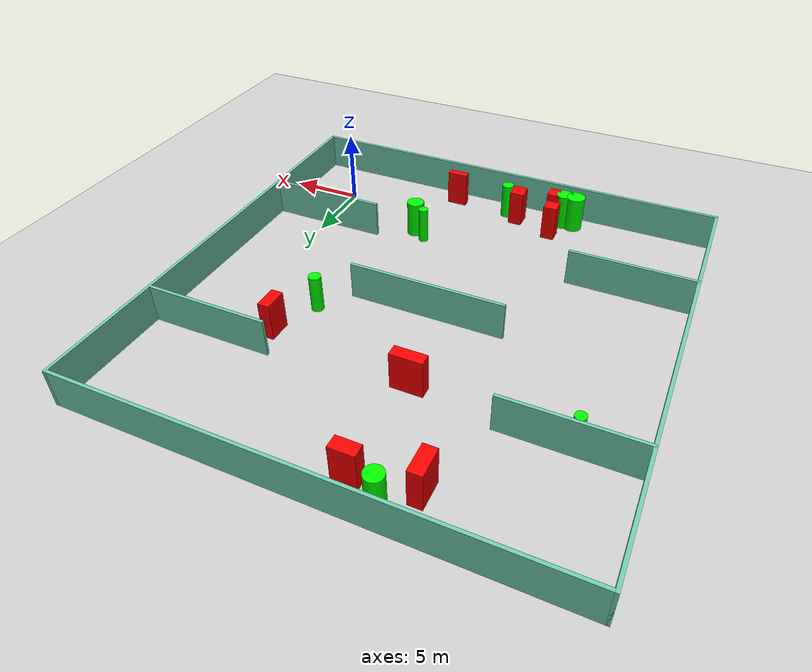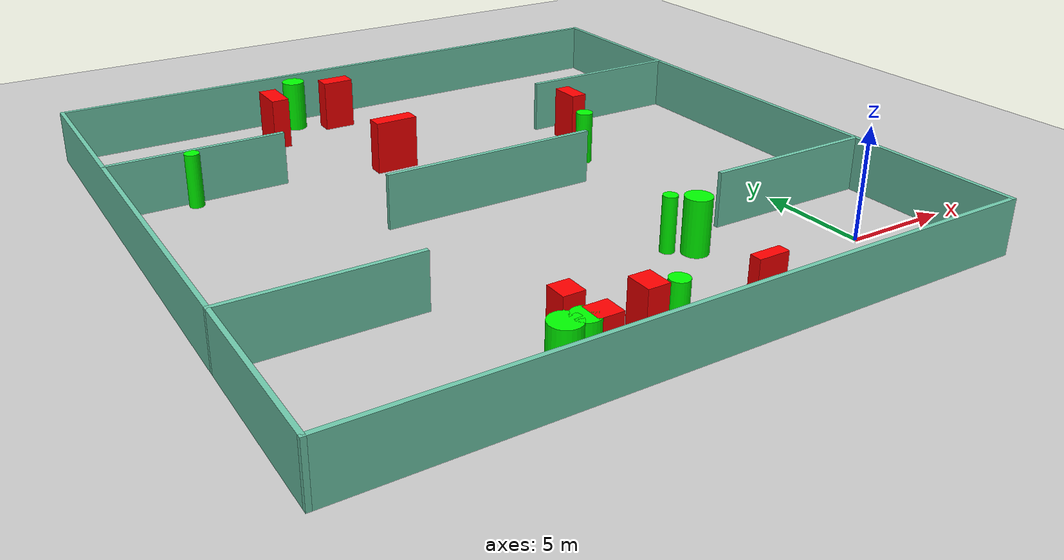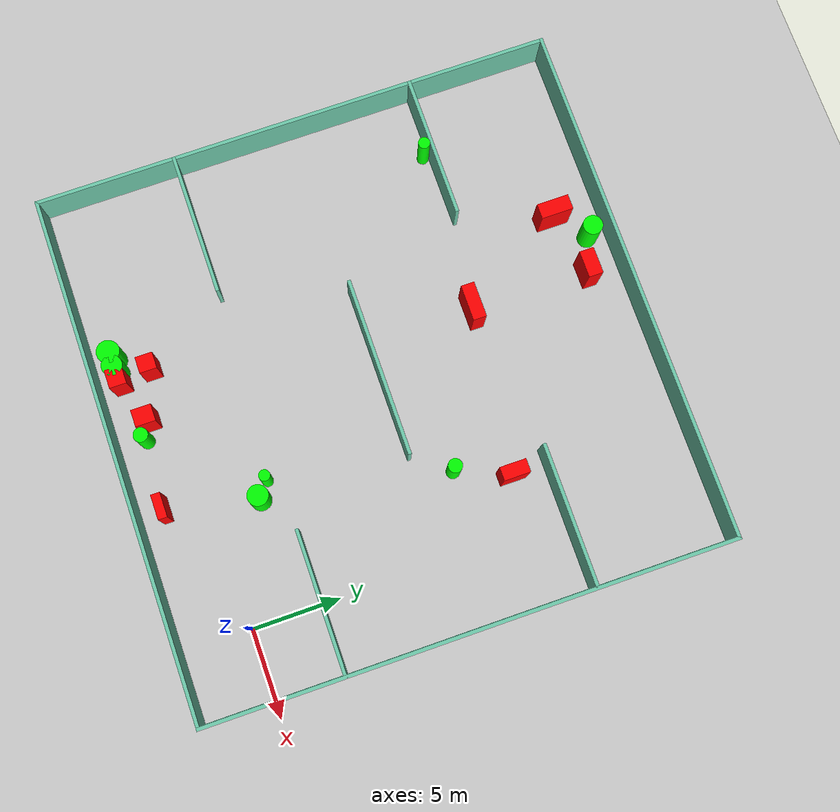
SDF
<sdf version="1.7">
 <world name="default">
  <light name="sun" type="directional">
   <pose>0 0 10 0 -0 0</pose>
   <diffuse>0.8 0.8 0.8 1</diffuse>
   <specular>0.2 0.2 0.2 1</specular>
   <attenuation>
    <range>1000</range>
    <constant>0.9</constant>
    <linear>0.01</linear>
    <quadratic>0.001</quadratic>
   </attenuation>
   <direction>-0.5 0.1 -0.9</direction>
   <spot><inner_angle>0</inner_angle><outer_angle>0</outer_angle><falloff>0</falloff></spot>
  </light>
  <model name="ground_plane">
   <static>1</static>
   <link name="link">
    <collision name="collision">
     <geometry><plane><normal>0 0 1</normal><size>100 100</size></plane></geometry>
     <surface>
      <contact><collide_bitmask>65535</collide_bitmask></contact>
      <friction><ode><mu>100</mu><mu2>50</mu2></ode></friction>
     </surface>
    </collision>
    <visual name="visual">
     <cast_shadows>0</cast_shadows>
     <geometry><plane><normal>0 0 1</normal><size>100 100</size></plane></geometry>
     <material>
      <script><uri>file://media/materials/scripts/gazebo.material</uri><name>Gazebo/Grey</name></script>
     </material>
    </visual>
   </link>
  </model>
  <gravity>0 0 -9.8</gravity>
  <magnetic_field>6e-06 2.3e-05 -4.2e-05</magnetic_field>
  <atmosphere type="adiabatic"/>
  <physics type="ode">
   <max_step_size>0.001</max_step_size>
   <real_time_factor>1</real_time_factor>
   <real_time_update_rate>1000</real_time_update_rate>
  </physics>
  <scene><ambient>0.4 0.4 0.4 1</ambient><background>0.7 0.7 0.7 1</background><shadows>1</shadows></scene>
  <spherical_coordinates>
   <surface_model>EARTH_WGS84</surface_model>
   <latitude_deg>0</latitude_deg>
   <longitude_deg>0</longitude_deg>
   <elevation>0</elevation>
   <heading_deg>0</heading_deg>
  </spherical_coordinates>
  <model name="my_base_walls">
   <link name="Wall_10">
    <collision name="Wall_10_Collision">
     <geometry><box><size>8.2 0.2 2.5</size></box></geometry>
     <pose>0 0 1.25 0 -0 0</pose>
    </collision>
    <visual name="Wall_10_Visual">
     <pose>0 0 1.25 0 -0 0</pose>
     <geometry><box><size>8.2 0.2 2.5</size></box></geometry>
     <material>
      <script><uri>file://media/materials/scripts/gazebo.material</uri><name>Gazebo/Grey</name></script>
      <ambient>0.435294 0.796078 0.67451 1</ambient>
     </material>
     <meta><layer>0</layer></meta>
    </visual>
    <pose>-11 -7 0 0 -0 0</pose>
   </link>
   <link name="Wall_12">
    <collision name="Wall_12_Collision">
     <geometry><box><size>8.2 0.2 2.5</size></box></geometry>
     <pose>0 0 1.25 0 -0 0</pose>
    </collision>
    <visual name="Wall_12_Visual">
     <pose>0 0 1.25 0 -0 0</pose>
     <geometry><box><size>8.2 0.2 2.5</size></box></geometry>
     <material>
      <script><uri>file://media/materials/scripts/gazebo.material</uri><name>Gazebo/Grey</name></script>
      <ambient>0.435294 0.796078 0.67451 1</ambient>
     </material>
     <meta><layer>0</layer></meta>
    </visual>
    <pose>-11 7 0 0 -0 0</pose>
   </link>
   <link name="Wall_14">
    <collision name="Wall_14_Collision">
     <geometry><box><size>8.2 0.2 2.5</size></box></geometry>
     <pose>0 0 1.25 0 -0 0</pose>
    </collision>
    <visual name="Wall_14_Visual">
     <pose>0 0 1.25 0 -0 0</pose>
     <geometry><box><size>8.2 0.2 2.5</size></box></geometry>
     <material>
      <script><uri>file://media/materials/scripts/gazebo.material</uri><name>Gazebo/Grey</name></script>
      <ambient>0.435294 0.796078 0.67451 1</ambient>
     </material>
     <meta><layer>0</layer></meta>
    </visual>
    <pose>11 7 0 0 -0 3.14159</pose>
   </link>
   <link name="Wall_16">
    <collision name="Wall_16_Collision">
     <geometry><box><size>10.2 0.2 2.5</size></box></geometry>
     <pose>0 0 1.25 0 -0 0</pose>
    </collision>
    <visual name="Wall_16_Visual">
     <pose>0 0 1.25 0 -0 0</pose>
     <geometry><box><size>10.2 0.2 2.5</size></box></geometry>
     <material>
      <script><uri>file://media/materials/scripts/gazebo.material</uri><name>Gazebo/Grey</name></script>
      <ambient>0.435294 0.796078 0.67451 1</ambient>
     </material>
     <meta><layer>0</layer></meta>
    </visual>
    <pose>0 0 0 0 -0 3.14159</pose>
   </link>
   <link name="Wall_2">
    <collision name="Wall_2_Collision">
     <geometry><box><size>30.2 0.2 2.5</size></box></geometry>
     <pose>0 0 1.25 0 -0 0</pose>
    </collision>
    <visual name="Wall_2_Visual">
     <pose>0 0 1.25 0 -0 0</pose>
     <geometry><box><size>30.2 0.2 2.5</size></box></geometry>
     <material>
      <script><uri>file://media/materials/scripts/gazebo.material</uri><name>Gazebo/Grey</name></script>
      <ambient>0.435294 0.796078 0.67451 1</ambient>
     </material>
     <meta><layer>0</layer></meta>
    </visual>
    <pose>0 -15 0 0 -0 3.14159</pose>
   </link>
   <link name="Wall_3">
    <collision name="Wall_3_Collision">
     <geometry><box><size>30.2 0.2 2.5</size></box></geometry>
     <pose>0 0 1.25 0 -0 0</pose>
    </collision>
    <visual name="Wall_3_Visual">
     <pose>0 0 1.25 0 -0 0</pose>
     <geometry><box><size>30.2 0.2 2.5</size></box></geometry>
     <material>
      <script><uri>file://media/materials/scripts/gazebo.material</uri><name>Gazebo/Grey</name></script>
      <ambient>0.435294 0.796078 0.67451 1</ambient>
     </material>
     <meta><layer>0</layer></meta>
    </visual>
    <pose>-15 0 0 0 -0 1.5708</pose>
   </link>
   <link name="Wall_4">
    <collision name="Wall_4_Collision">
     <geometry><box><size>30.2 0.2 2.5</size></box></geometry>
     <pose>0 0 1.25 0 -0 0</pose>
    </collision>
    <visual name="Wall_4_Visual">
     <pose>0 0 1.25 0 -0 0</pose>
     <geometry><box><size>30.2 0.2 2.5</size></box></geometry>
     <material>
      <script><uri>file://media/materials/scripts/gazebo.material</uri><name>Gazebo/Grey</name></script>
      <ambient>0.435294 0.796078 0.67451 1</ambient>
     </material>
     <meta><layer>0</layer></meta>
    </visual>
    <pose>0 15 0 0 -0 0</pose>
   </link>
   <link name="Wall_6">
    <collision name="Wall_6_Collision">
     <geometry><box><size>30.2 0.2 2.5</size></box></geometry>
     <pose>0 0 1.25 0 -0 0</pose>
    </collision>
    <visual name="Wall_6_Visual">
     <pose>0 0 1.25 0 -0 0</pose>
     <geometry><box><size>30.2 0.2 2.5</size></box></geometry>
     <material>
      <script><uri>file://media/materials/scripts/gazebo.material</uri><name>Gazebo/Grey</name></script>
      <ambient>0.435294 0.796078 0.67451 1</ambient>
     </material>
     <meta><layer>0</layer></meta>
    </visual>
    <pose>15 0 0 0 -0 1.5708</pose>
   </link>
   <link name="Wall_8">
    <collision name="Wall_8_Collision">
     <geometry><box><size>8.2 0.2 2.5</size></box></geometry>
     <pose>0 0 1.25 0 -0 0</pose>
    </collision>
    <visual name="Wall_8_Visual">
     <pose>0 0 1.25 0 -0 0</pose>
     <geometry><box><size>8.2 0.2 2.5</size></box></geometry>
     <material>
      <script><uri>file://media/materials/scripts/gazebo.material</uri><name>Gazebo/Grey</name></script>
      <ambient>0.435294 0.796078 0.67451 1</ambient>
     </material>
     <meta><layer>0</layer></meta>
    </visual>
    <pose>11 -7 0 0 -0 3.14159</pose>
   </link>
   <static>1</static>
   <pose>-11 11 0 0 -0 0</pose>
  </model>
  <model name="cylinder1">
   <static>1</static>
   <link name="link">
    <inertial>
     <mass>1</mass>
     <inertia><ixx>0.5</ixx><ixy>0</ixy><ixz>0</ixz><iyy>0.5</iyy><iyz>0</iyz><izz>1</izz></inertia>
    </inertial>
    <collision name="collision">
     <geometry><cylinder><radius>0.6438379884076393</radius><length>2.5</length></cylinder></geometry>
    </collision>
    <visual name="visual">
     <geometry><cylinder><radius>0.6438379884076393</radius><length>2.5</length></cylinder></geometry>
     <material>
      <ambient>0 1 0 1</ambient>
      <diffuse>0 1 0 1</diffuse>
      <specular>0.1 0.1 0.1 1</specular>
      <emissive>0 0 0 0</emissive>
     </material>
    </visual>
   </link>
   <pose>-16.569602091122363 -2.684606723683738 1.25 0 0 0</pose>
  </model>
  <model name="cylinder2">
   <static>1</static>
   <link name="link">
    <inertial>
     <mass>1</mass>
     <inertia><ixx>0.5</ixx><ixy>0</ixy><ixz>0</ixz><iyy>0.5</iyy><iyz>0</iyz><izz>1</izz></inertia>
    </inertial>
    <collision name="collision">
     <geometry><cylinder><radius>0.5901810041488547</radius><length>2.5</length></cylinder></geometry>
    </collision>
    <visual name="visual">
     <geometry><cylinder><radius>0.5901810041488547</radius><length>2.5</length></cylinder></geometry>
     <material>
      <ambient>0 1 0 1</ambient>
      <diffuse>0 1 0 1</diffuse>
      <specular>0.1 0.1 0.1 1</specular>
      <emissive>0 0 0 0</emissive>
     </material>
    </visual>
   </link>
   <pose>-6.455051863899696 2.6063761233250267 1.25 0 0 0</pose>
  </model>
  <model name="cylinder3">
   <static>1</static>
   <link name="link">
    <inertial>
     <mass>1</mass>
     <inertia><ixx>0.5</ixx><ixy>0</ixy><ixz>0</ixz><iyy>0.5</iyy><iyz>0</iyz><izz>1</izz></inertia>
    </inertial>
    <collision name="collision">
     <geometry><cylinder><radius>0.5833850374250258</radius><length>2.5</length></cylinder></geometry>
    </collision>
    <visual name="visual">
     <geometry><cylinder><radius>0.5833850374250258</radius><length>2.5</length></cylinder></geometry>
     <material>
      <ambient>0 1 0 1</ambient>
      <diffuse>0 1 0 1</diffuse>
      <specular>0.1 0.1 0.1 1</specular>
      <emissive>0 0 0 0</emissive>
     </material>
    </visual>
   </link>
   <pose>-15.77739012289895 -2.706100187088779 1.25 0 0 0</pose>
  </model>
  <model name="cylinder4">
   <static>1</static>
   <link name="link">
    <inertial>
     <mass>1</mass>
     <inertia><ixx>0.5</ixx><ixy>0</ixy><ixz>0</ixz><iyy>0.5</iyy><iyz>0</iyz><izz>1</izz></inertia>
    </inertial>
    <collision name="collision">
     <geometry><cylinder><radius>0.32051737987567175</radius><length>2.5</length></cylinder></geometry>
    </collision>
    <visual name="visual">
     <geometry><cylinder><radius>0.32051737987567175</radius><length>2.5</length></cylinder></geometry>
     <material>
      <ambient>0 1 0 1</ambient>
      <diffuse>0 1 0 1</diffuse>
      <specular>0.1 0.1 0.1 1</specular>
      <emissive>0 0 0 0</emissive>
     </material>
    </visual>
   </link>
   <pose>-7.358739198986006 3.26920246077061 1.25 0 0 0</pose>
  </model>
  <model name="cylinder5">
   <static>1</static>
   <link name="link">
    <inertial>
     <mass>1</mass>
     <inertia><ixx>0.5</ixx><ixy>0</ixy><ixz>0</ixz><iyy>0.5</iyy><iyz>0</iyz><izz>1</izz></inertia>
    </inertial>
    <collision name="collision">
     <geometry><cylinder><radius>0.33810806525988046</radius><length>2.5</length></cylinder></geometry>
    </collision>
    <visual name="visual">
     <geometry><cylinder><radius>0.33810806525988046</radius><length>2.5</length></cylinder></geometry>
     <material>
      <ambient>0 1 0 1</ambient>
      <diffuse>0 1 0 1</diffuse>
      <specular>0.1 0.1 0.1 1</specular>
      <emissive>0 0 0 0</emissive>
     </material>
    </visual>
   </link>
   <pose>-22.300162711085644 17.592819619946162 1.25 0 0 0</pose>
  </model>
  <model name="cylinder6">
   <static>1</static>
   <link name="link">
    <inertial>
     <mass>1</mass>
     <inertia><ixx>0.5</ixx><ixy>0</ixy><ixz>0</ixz><iyy>0.5</iyy><iyz>0</iyz><izz>1</izz></inertia>
    </inertial>
    <collision name="collision">
     <geometry><cylinder><radius>0.4102916097114288</radius><length>2.5</length></cylinder></geometry>
    </collision>
    <visual name="visual">
     <geometry><cylinder><radius>0.4102916097114288</radius><length>2.5</length></cylinder></geometry>
     <material>
      <ambient>0 1 0 1</ambient>
      <diffuse>0 1 0 1</diffuse>
      <specular>0.1 0.1 0.1 1</specular>
      <emissive>0 0 0 0</emissive>
     </material>
    </visual>
   </link>
   <pose>-11.606263954053116 -2.338652713435972 1.25 0 0 0</pose>
  </model>
  <model name="cylinder7">
   <static>1</static>
   <link name="link">
    <inertial>
     <mass>1</mass>
     <inertia><ixx>0.5</ixx><ixy>0</ixy><ixz>0</ixz><iyy>0.5</iyy><iyz>0</iyz><izz>1</izz></inertia>
    </inertial>
    <collision name="collision">
     <geometry><cylinder><radius>0.5578835875303454</radius><length>2.5</length></cylinder></geometry>
    </collision>
    <visual name="visual">
     <geometry><cylinder><radius>0.5578835875303454</radius><length>2.5</length></cylinder></geometry>
     <material>
      <ambient>0 1 0 1</ambient>
      <diffuse>0 1 0 1</diffuse>
      <specular>0.1 0.1 0.1 1</specular>
      <emissive>0 0 0 0</emissive>
     </material>
    </visual>
   </link>
   <pose>-14.698235415274322 24.855662310693987 1.25 0 0 0</pose>
  </model>
  <model name="cylinder8">
   <static>1</static>
   <link name="link">
    <inertial>
     <mass>1</mass>
     <inertia><ixx>0.5</ixx><ixy>0</ixy><ixz>0</ixz><iyy>0.5</iyy><iyz>0</iyz><izz>1</izz></inertia>
    </inertial>
    <collision name="collision">
     <geometry><cylinder><radius>0.4002317875192927</radius><length>2.5</length></cylinder></geometry>
    </collision>
    <visual name="visual">
     <geometry><cylinder><radius>0.4002317875192927</radius><length>2.5</length></cylinder></geometry>
     <material>
      <ambient>0 1 0 1</ambient>
      <diffuse>0 1 0 1</diffuse>
      <specular>0.1 0.1 0.1 1</specular>
      <emissive>0 0 0 0</emissive>
     </material>
    </visual>
   </link>
   <pose>-4.522630494713415 13.090108621580928 1.25 0 0 0</pose>
  </model>
  <model name="box1">
   <static>1</static>
   <link name="link">
    <inertial>
     <mass>1</mass>
     <inertia><ixx>0.083</ixx><ixy>0</ixy><ixz>0</ixz><iyy>0.083</iyy><iyz>0</iyz><izz>0.083</izz></inertia>
    </inertial>
    <collision name="collision">
     <geometry><box><size>2.041406359951989 0.7665713573871717 2.5</size></box></geometry>
    </collision>
    <visual name="visual">
     <geometry><box><size>2.041406359951989 0.7665713573871717 2.5</size></box></geometry>
     <material>
      <ambient>1 0 0 1</ambient>
      <diffuse>1 0 0 1</diffuse>
      <specular>0.1 0.1 0.1 1</specular>
      <emissive>0 0 0 0</emissive>
     </material>
    </visual>
    <sensor name="my_contact" type="contact">
     <contact><collision>box_collision</collision><topic>__default_topic__</topic></contact>
    </sensor>
   </link>
   <pose>-12.754446072797549 17.109061805316564 1.25 0 0 0</pose>
  </model>
  <model name="box2">
   <static>1</static>
   <link name="link">
    <inertial>
     <mass>1</mass>
     <inertia><ixx>0.083</ixx><ixy>0</ixy><ixz>0</ixz><iyy>0.083</iyy><iyz>0</iyz><izz>0.083</izz></inertia>
    </inertial>
    <collision name="collision">
     <geometry><box><size>1.0334237197969531 0.9631770726036406 2.5</size></box></geometry>
    </collision>
    <visual name="visual">
     <geometry><box><size>1.0334237197969531 0.9631770726036406 2.5</size></box></geometry>
     <material>
      <ambient>1 0 0 1</ambient>
      <diffuse>1 0 0 1</diffuse>
      <specular>0.1 0.1 0.1 1</specular>
      <emissive>0 0 0 0</emissive>
     </material>
    </visual>
    <sensor name="my_contact" type="contact">
     <contact><collision>box_collision</collision><topic>__default_topic__</topic></contact>
    </sensor>
   </link>
   <pose>-15.101681868721826 -2.7086303581506126 1.25 0 0 0</pose>
  </model>
  <model name="box3">
   <static>1</static>
   <link name="link">
    <inertial>
     <mass>1</mass>
     <inertia><ixx>0.083</ixx><ixy>0</ixy><ixz>0</ixz><iyy>0.083</iyy><iyz>0</iyz><izz>0.083</izz></inertia>
    </inertial>
    <collision name="collision">
     <geometry><box><size>0.9288381345626681 0.9763123101065528 2.5</size></box></geometry>
    </collision>
    <visual name="visual">
     <geometry><box><size>0.9288381345626681 0.9763123101065528 2.5</size></box></geometry>
     <material>
      <ambient>1 0 0 1</ambient>
      <diffuse>1 0 0 1</diffuse>
      <specular>0.1 0.1 0.1 1</specular>
      <emissive>0 0 0 0</emissive>
     </material>
    </visual>
    <sensor name="my_contact" type="contact">
     <contact><collision>box_collision</collision><topic>__default_topic__</topic></contact>
    </sensor>
   </link>
   <pose>-15.311407218665568 -0.9127762437076847 1.25 0 0 0</pose>
  </model>
  <model name="box4">
   <static>1</static>
   <link name="link">
    <inertial>
     <mass>1</mass>
     <inertia><ixx>0.083</ixx><ixy>0</ixy><ixz>0</ixz><iyy>0.083</iyy><iyz>0</iyz><izz>0.083</izz></inertia>
    </inertial>
    <collision name="collision">
     <geometry><box><size>1.5279373540868257 0.8325225024604794 2.5</size></box></geometry>
    </collision>
    <visual name="visual">
     <geometry><box><size>1.5279373540868257 0.8325225024604794 2.5</size></box></geometry>
     <material>
      <ambient>1 0 0 1</ambient>
      <diffuse>1 0 0 1</diffuse>
      <specular>0.1 0.1 0.1 1</specular>
      <emissive>0 0 0 0</emissive>
     </material>
    </visual>
    <sensor name="my_contact" type="contact">
     <contact><collision>box_collision</collision><topic>__default_topic__</topic></contact>
    </sensor>
   </link>
   <pose>-12.718917286105974 23.997060451648508 1.25 0 0 0</pose>
  </model>
  <model name="box5">
   <static>1</static>
   <link name="link">
    <inertial>
     <mass>1</mass>
     <inertia><ixx>0.083</ixx><ixy>0</ixy><ixz>0</ixz><iyy>0.083</iyy><iyz>0</iyz><izz>0.083</izz></inertia>
    </inertial>
    <collision name="collision">
     <geometry><box><size>0.770729499623598 1.512527372407359 2.5</size></box></geometry>
    </collision>
    <visual name="visual">
     <geometry><box><size>0.770729499623598 1.512527372407359 2.5</size></box></geometry>
     <material>
      <ambient>1 0 0 1</ambient>
      <diffuse>1 0 0 1</diffuse>
      <specular>0.1 0.1 0.1 1</specular>
      <emissive>0 0 0 0</emissive>
     </material>
    </visual>
    <sensor name="my_contact" type="contact">
     <contact><collision>box_collision</collision><topic>__default_topic__</topic></contact>
    </sensor>
   </link>
   <pose>-3.278614064109444 16.04060558837192 1.25 0 0 0</pose>
  </model>
  <model name="box6">
   <static>1</static>
   <link name="link">
    <inertial>
     <mass>1</mass>
     <inertia><ixx>0.083</ixx><ixy>0</ixy><ixz>0</ixz><iyy>0.083</iyy><iyz>0</iyz><izz>0.083</izz></inertia>
    </inertial>
    <collision name="collision">
     <geometry><box><size>0.8533892881990632 1.8309155823742251 2.5</size></box></geometry>
    </collision>
    <visual name="visual">
     <geometry><box><size>0.8533892881990632 1.8309155823742251 2.5</size></box></geometry>
     <material>
      <ambient>1 0 0 1</ambient>
      <diffuse>1 0 0 1</diffuse>
      <specular>0.1 0.1 0.1 1</specular>
      <emissive>0 0 0 0</emissive>
     </material>
    </visual>
    <sensor name="my_contact" type="contact">
     <contact><collision>box_collision</collision><topic>__default_topic__</topic></contact>
    </sensor>
   </link>
   <pose>-16.38137213093236 23.23375442155671 1.25 0 0 0</pose>
  </model>
  <model name="box7">
   <static>1</static>
   <link name="link">
    <inertial>
     <mass>1</mass>
     <inertia><ixx>0.083</ixx><ixy>0</ixy><ixz>0</ixz><iyy>0.083</iyy><iyz>0</iyz><izz>0.083</izz></inertia>
    </inertial>
    <collision name="collision">
     <geometry><box><size>0.9566333156270836 1.1299855830019316 2.5</size></box></geometry>
    </collision>
    <visual name="visual">
     <geometry><box><size>0.9566333156270836 1.1299855830019316 2.5</size></box></geometry>
     <material>
      <ambient>1 0 0 1</ambient>
      <diffuse>1 0 0 1</diffuse>
      <specular>0.1 0.1 0.1 1</specular>
      <emissive>0 0 0 0</emissive>
     </material>
    </visual>
    <sensor name="my_contact" type="contact">
     <contact><collision>box_collision</collision><topic>__default_topic__</topic></contact>
    </sensor>
   </link>
   <pose>-12.578126221165356 -1.9018613327587013 1.25 0 0 0</pose>
  </model>
  <model name="box8">
   <static>1</static>
   <link name="link">
    <inertial>
     <mass>1</mass>
     <inertia><ixx>0.083</ixx><ixy>0</ixy><ixz>0</ixz><iyy>0.083</iyy><iyz>0</iyz><izz>0.083</izz></inertia>
    </inertial>
    <collision name="collision">
     <geometry><box><size>1.4046986658041796 0.5167407644807764 2.5</size></box></geometry>
    </collision>
    <visual name="visual">
     <geometry><box><size>1.4046986658041796 0.5167407644807764 2.5</size></box></geometry>
     <material>
      <ambient>1 0 0 1</ambient>
      <diffuse>1 0 0 1</diffuse>
      <specular>0.1 0.1 0.1 1</specular>
      <emissive>0 0 0 0</emissive>
     </material>
    </visual>
    <sensor name="my_contact" type="contact">
     <contact><collision>box_collision</collision><topic>__default_topic__</topic></contact>
    </sensor>
   </link>
   <pose>-7.6276703976042945 -2.5335750936805903 1.25 0 0 0</pose>
  </model>
 </world>
</sdf>
